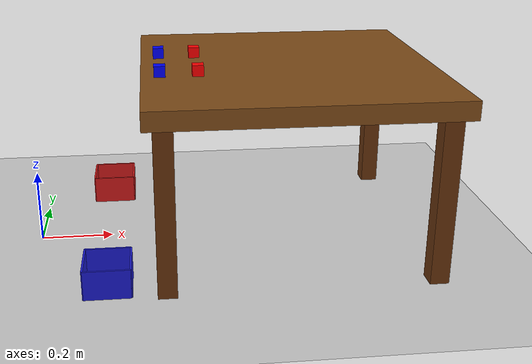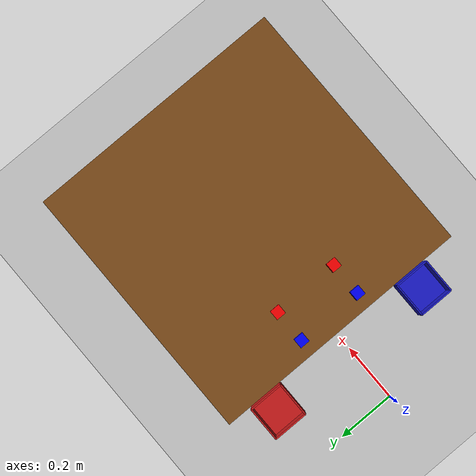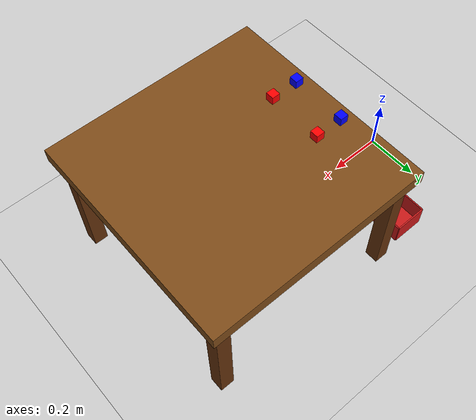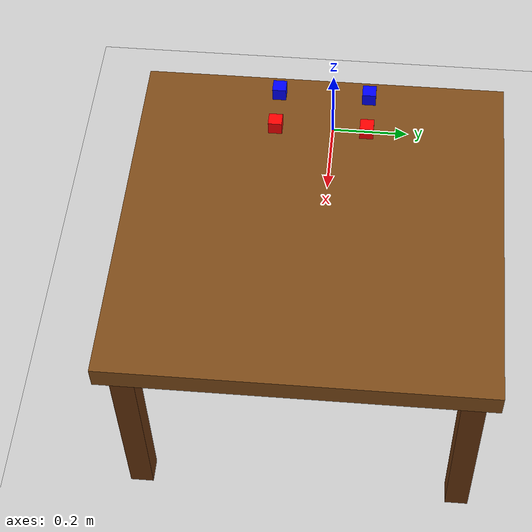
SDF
<?xml version="1.0"?>
<sdf version="1.8">
    <world name="pick_world">

        <physics name="1ms" type="bullet_featherstone">
            <max_step_size>0.001</max_step_size>
            <real_time_factor>1.0</real_time_factor>
        </physics>

        <plugin filename="gz-sim-physics-system"
            name="gz::sim::systems::Physics">
            <engine>
                <filename>gz-physics-bullet-featherstone-plugin</filename>
            </engine>
        </plugin>
        <plugin filename="gz-sim-user-commands-system"
            name="gz::sim::systems::UserCommands"/>
        <plugin filename="gz-sim-scene-broadcaster-system"
            name="gz::sim::systems::SceneBroadcaster"/>
        <plugin filename="gz-sim-contact-system"
            name="gz::sim::systems::Contact"/>
        <plugin filename="gz-sim-sensors-system"
            name="gz::sim::systems::Sensors">
            <render_engine>ogre2</render_engine>
        </plugin>
        <plugin filename="gz-sim-pose-publisher-system"
            name="gz::sim::systems::PosePublisher">
            <publish_model_pose>true</publish_model_pose>
            <publish_link_pose>false</publish_link_pose>
            <publish_collision_pose>false</publish_collision_pose>
            <publish_visual_pose>false</publish_visual_pose>
            <update_frequency>30</update_frequency>
        </plugin>

        <light name="sun" type="directional">
            <cast_shadows>true</cast_shadows>
            <pose>0 0 10 0 0 0</pose>
            <diffuse>0.8 0.8 0.8 1</diffuse>
            <specular>0.2 0.2 0.2 1</specular>
            <direction>-0.5 -1 -1</direction>
        </light>

        <model name="ground_plane">
            <static>true</static>
            <link name="link">
                <collision name="collision">
                    <geometry>
                        <plane>
                            <size>100 100</size>
                            <normal>0 0 1</normal>
                        </plane>
                    </geometry>
                </collision>
                <visual name="visual">
                    <geometry>
                        <plane>
                            <size>100 100</size>
                            <normal>0 0 1</normal>
                        </plane>
                    </geometry>
                    <material>
                        <ambient>0.8 0.8 0.8 1</ambient>
                        <diffuse>0.8 0.8 0.8 1</diffuse>
                    </material>
                </visual>
            </link>
        </model>

    <model name="table">
      <static>true</static>
      <pose>0.7 0 0 0 0 0</pose>
      <link name="link">

        <collision name="top_collision">
          <pose>0 0 0.475 0 0 0</pose>
          <geometry>
            <box><size>0.8 0.8 0.05</size></box>
          </geometry>
        </collision>
        <visual name="top_visual">
          <pose>0 0 0.475 0 0 0</pose>
          <geometry>
            <box><size>0.8 0.8 0.05</size></box>
          </geometry>
          <material>
            <ambient>0.5 0.3 0.1 1</ambient>
            <diffuse>0.5 0.3 0.1 1</diffuse>
          </material>
        </visual>

        <collision name="leg_fl_collision">
          <pose>0.35 0.35 0.225 0 0 0</pose>
          <geometry>
            <box><size>0.05 0.05 0.45</size></box>
          </geometry>
        </collision>
        <visual name="leg_fl_visual">
          <pose>0.35 0.35 0.225 0 0 0</pose>
          <geometry>
            <box><size>0.05 0.05 0.45</size></box>
          </geometry>
          <material>
            <ambient>0.4 0.2 0.05 1</ambient>
            <diffuse>0.4 0.2 0.05 1</diffuse>
          </material>
        </visual>

        <collision name="leg_fr_collision">
          <pose>0.35 -0.35 0.225 0 0 0</pose>
          <geometry>
            <box><size>0.05 0.05 0.45</size></box>
          </geometry>
        </collision>
        <visual name="leg_fr_visual">
          <pose>0.35 -0.35 0.225 0 0 0</pose>
          <geometry>
            <box><size>0.05 0.05 0.45</size></box>
          </geometry>
          <material>
            <ambient>0.4 0.2 0.05 1</ambient>
            <diffuse>0.4 0.2 0.05 1</diffuse>
          </material>
        </visual>

        <collision name="leg_bl_collision">
          <pose>-0.35 0.35 0.225 0 0 0</pose>
          <geometry>
            <box><size>0.05 0.05 0.45</size></box>
          </geometry>
        </collision>
        <visual name="leg_bl_visual">
          <pose>-0.35 0.35 0.225 0 0 0</pose>
          <geometry>
            <box><size>0.05 0.05 0.45</size></box>
          </geometry>
          <material>
            <ambient>0.4 0.2 0.05 1</ambient>
            <diffuse>0.4 0.2 0.05 1</diffuse>
          </material>
        </visual>

        <collision name="leg_br_collision">
          <pose>-0.35 -0.35 0.225 0 0 0</pose>
          <geometry>
            <box><size>0.05 0.05 0.45</size></box>
          </geometry>
        </collision>
        <visual name="leg_br_visual">
          <pose>-0.35 -0.35 0.225 0 0 0</pose>
          <geometry>
            <box><size>0.05 0.05 0.45</size></box>
          </geometry>
          <material>
            <ambient>0.4 0.2 0.05 1</ambient>
            <diffuse>0.4 0.2 0.05 1</diffuse>
          </material>
        </visual>

      </link>
    </model>

    <model name="red_box_1">
      <static>false</static>
      <pose>0.45 0.1 0.515 0 0 0</pose>
      <link name="link">
        <inertial>
          <mass>0.05</mass>
          <inertia>
            <ixx>0.000015</ixx>
            <iyy>0.000015</iyy>
            <izz>0.000015</izz>
          </inertia>
        </inertial>
        <collision name="collision">
          <geometry>
            <box><size>0.03 0.03 0.03</size></box>
          </geometry>
          <surface>
            <friction>
              <ode>
                <mu>5</mu>
                <mu2>5</mu2>
              </ode>
            </friction>
          </surface>
        </collision>
        <visual name="visual">
          <geometry>
            <box><size>0.03 0.03 0.03</size></box>
          </geometry>
          <material>
            <ambient>1 0 0 1</ambient>
            <diffuse>1 0 0 1</diffuse>
          </material>
        </visual>
      </link>
    </model>

    <model name="red_box_2">
      <static>false</static>
      <pose>0.45 -0.1 0.515 0 0 0</pose>
      <link name="link">
        <inertial>
          <mass>0.05</mass>
          <inertia>
            <ixx>0.000015</ixx>
            <iyy>0.000015</iyy>
            <izz>0.000015</izz>
          </inertia>
        </inertial>
        <collision name="collision">
          <geometry>
            <box><size>0.03 0.03 0.03</size></box>
          </geometry>
          <surface>
            <friction>
              <ode>
                <mu>5</mu>
                <mu2>5</mu2>
              </ode>
            </friction>
          </surface>
        </collision>
        <visual name="visual">
          <geometry>
            <box><size>0.03 0.03 0.03</size></box>
          </geometry>
          <material>
            <ambient>1 0 0 1</ambient>
            <diffuse>1 0 0 1</diffuse>
          </material>
        </visual>
      </link>
    </model>

    <model name="blue_box_1">
      <static>false</static>
      <pose>0.35 -0.1 0.515 0 0 0</pose>
      <link name="link">
        <inertial>
          <mass>0.05</mass>
          <inertia>
            <ixx>0.000015</ixx>
            <iyy>0.000015</iyy>
            <izz>0.000015</izz>
          </inertia>
        </inertial>
        <collision name="collision">
          <geometry>
            <box><size>0.03 0.03 0.03</size></box>
          </geometry>
          <surface>
            <friction>
              <ode>
                <mu>5</mu>
                <mu2>5</mu2>
              </ode>
            </friction>
          </surface>
        </collision>
        <visual name="visual">
          <geometry>
            <box><size>0.03 0.03 0.03</size></box>
          </geometry>
          <material>
            <ambient>0 0 1 1</ambient>
            <diffuse>0 0 1 1</diffuse>
          </material>
        </visual>
      </link>
    </model>

    <model name="blue_box_2">
      <static>false</static>
      <pose>0.35 0.1 0.515 0 0 0</pose>
      <link name="link">
        <inertial>
          <mass>0.05</mass>
          <inertia>
            <ixx>0.000015</ixx>
            <iyy>0.000015</iyy>
            <izz>0.000015</izz>
          </inertia>
        </inertial>
        <collision name="collision">
          <geometry>
            <box><size>0.03 0.03 0.03</size></box>
          </geometry>
          <surface>
            <friction>
              <ode>
                <mu>5</mu>
                <mu2>5</mu2>
              </ode>
            </friction>
          </surface>
        </collision>
        <visual name="visual">
          <geometry>
            <box><size>0.03 0.03 0.03</size></box>
          </geometry>
          <material>
            <ambient>0 0 1 1</ambient>
            <diffuse>0 0 1 1</diffuse>
          </material>
        </visual>
      </link>
    </model>

    <model name="red_bin">
      <static>true</static>
      <pose>0.2 0.3 0.0 0 0 0</pose>
      <link name="link">

        <collision name="floor">
          <pose>0 0 0.0025 0 0 0</pose>
          <geometry>
            <box><size>0.12 0.12 0.005</size></box>
          </geometry>
        </collision>
        <visual name="floor">
          <pose>0 0 0.0025 0 0 0</pose>
          <geometry>
            <box><size>0.12 0.12 0.005</size></box>
          </geometry>
          <material>
            <ambient>0.8 0.1 0.1 1</ambient>
            <diffuse>0.8 0.1 0.1 1</diffuse>
          </material>
        </visual>

        <collision name="wall_front">
          <pose>0.06 0 0.04 0 0 0</pose>
          <geometry>
            <box><size>0.005 0.12 0.08</size></box>
          </geometry>
        </collision>
        <visual name="wall_front">
          <pose>0.06 0 0.04 0 0 0</pose>
          <geometry>
            <box><size>0.005 0.12 0.08</size></box>
          </geometry>
          <material>
            <ambient>0.8 0.1 0.1 1</ambient>
            <diffuse>0.8 0.1 0.1 1</diffuse>
          </material>
        </visual>

        <collision name="wall_back">
          <pose>-0.06 0 0.04 0 0 0</pose>
          <geometry>
            <box><size>0.005 0.12 0.08</size></box>
          </geometry>
        </collision>
        <visual name="wall_back">
          <pose>-0.06 0 0.04 0 0 0</pose>
          <geometry>
            <box><size>0.005 0.12 0.08</size></box>
          </geometry>
          <material>
            <ambient>0.8 0.1 0.1 1</ambient>
            <diffuse>0.8 0.1 0.1 1</diffuse>
          </material>
        </visual>

        <collision name="wall_left">
          <pose>0 0.06 0.04 0 0 0</pose>
          <geometry>
            <box><size>0.12 0.005 0.08</size></box>
          </geometry>
        </collision>
        <visual name="wall_left">
          <pose>0 0.06 0.04 0 0 0</pose>
          <geometry>
            <box><size>0.12 0.005 0.08</size></box>
          </geometry>
          <material>
            <ambient>0.8 0.1 0.1 1</ambient>
            <diffuse>0.8 0.1 0.1 1</diffuse>
          </material>
        </visual>

        <collision name="wall_right">
          <pose>0 -0.06 0.04 0 0 0</pose>
          <geometry>
            <box><size>0.12 0.005 0.08</size></box>
          </geometry>
        </collision>
        <visual name="wall_right">
          <pose>0 -0.06 0.04 0 0 0</pose>
          <geometry>
            <box><size>0.12 0.005 0.08</size></box>
          </geometry>
          <material>
            <ambient>0.8 0.1 0.1 1</ambient>
            <diffuse>0.8 0.1 0.1 1</diffuse>
          </material>
        </visual>
      </link>
    </model>

    <model name="blue_bin">
      <static>true</static>
      <pose>0.2 -0.3 0.0 0 0 0</pose>
      <link name="link">

        <collision name="floor">
          <pose>0 0 0.0025 0 0 0</pose>
          <geometry>
            <box><size>0.12 0.12 0.005</size></box>
          </geometry>
        </collision>
        <visual name="floor">
          <pose>0 0 0.0025 0 0 0</pose>
          <geometry>
            <box><size>0.12 0.12 0.005</size></box>
          </geometry>
          <material>
            <ambient>0.1 0.1 0.8 1</ambient>
            <diffuse>0.1 0.1 0.8 1</diffuse>
          </material>
        </visual>

        <collision name="wall_front">
          <pose>0.06 0 0.04 0 0 0</pose>
          <geometry>
            <box><size>0.005 0.12 0.08</size></box>
          </geometry>
        </collision>
        <visual name="wall_front">
          <pose>0.06 0 0.04 0 0 0</pose>
          <geometry>
            <box><size>0.005 0.12 0.08</size></box>
          </geometry>
          <material>
            <ambient>0.1 0.1 0.8 1</ambient>
            <diffuse>0.1 0.1 0.8 1</diffuse>
          </material>
        </visual>

        <collision name="wall_back">
          <pose>-0.06 0 0.04 0 0 0</pose>
          <geometry>
            <box><size>0.005 0.12 0.08</size></box>
          </geometry>
        </collision>
        <visual name="wall_back">
          <pose>-0.06 0 0.04 0 0 0</pose>
          <geometry>
            <box><size>0.005 0.12 0.08</size></box>
          </geometry>
          <material>
            <ambient>0.1 0.1 0.8 1</ambient>
            <diffuse>0.1 0.1 0.8 1</diffuse>
          </material>
        </visual>

        <collision name="wall_left">
          <pose>0 0.06 0.04 0 0 0</pose>
          <geometry>
            <box><size>0.12 0.005 0.08</size></box>
          </geometry>
        </collision>
        <visual name="wall_left">
          <pose>0 0.06 0.04 0 0 0</pose>
          <geometry>
            <box><size>0.12 0.005 0.08</size></box>
          </geometry>
          <material>
            <ambient>0.1 0.1 0.8 1</ambient>
            <diffuse>0.1 0.1 0.8 1</diffuse>
          </material>
        </visual>

        <collision name="wall_right">
          <pose>0 -0.06 0.04 0 0 0</pose>
          <geometry>
            <box><size>0.12 0.005 0.08</size></box>
          </geometry>
        </collision>
        <visual name="wall_right">
          <pose>0 -0.06 0.04 0 0 0</pose>
          <geometry>
            <box><size>0.12 0.005 0.08</size></box>
          </geometry>
          <material>
            <ambient>0.1 0.1 0.8 1</ambient>
            <diffuse>0.1 0.1 0.8 1</diffuse>
          </material>
        </visual>
      </link>
    </model>

    </world>
</sdf>
